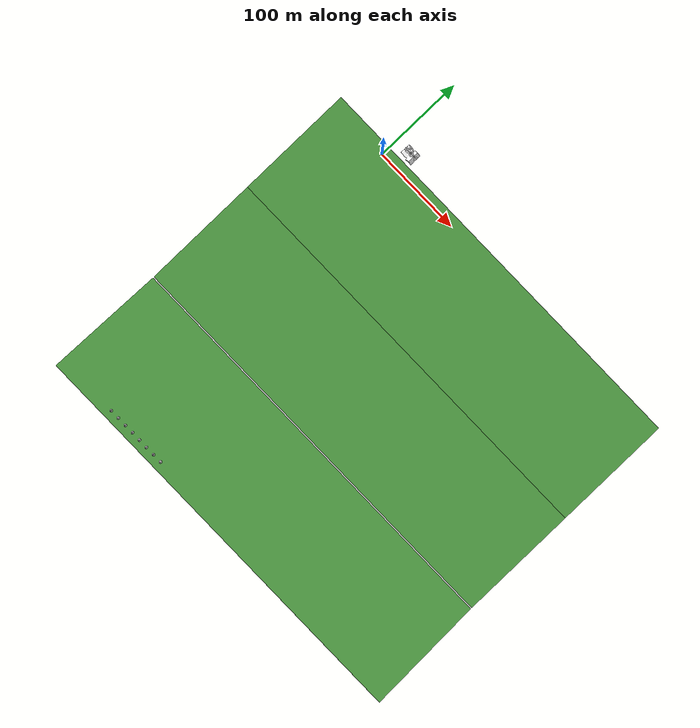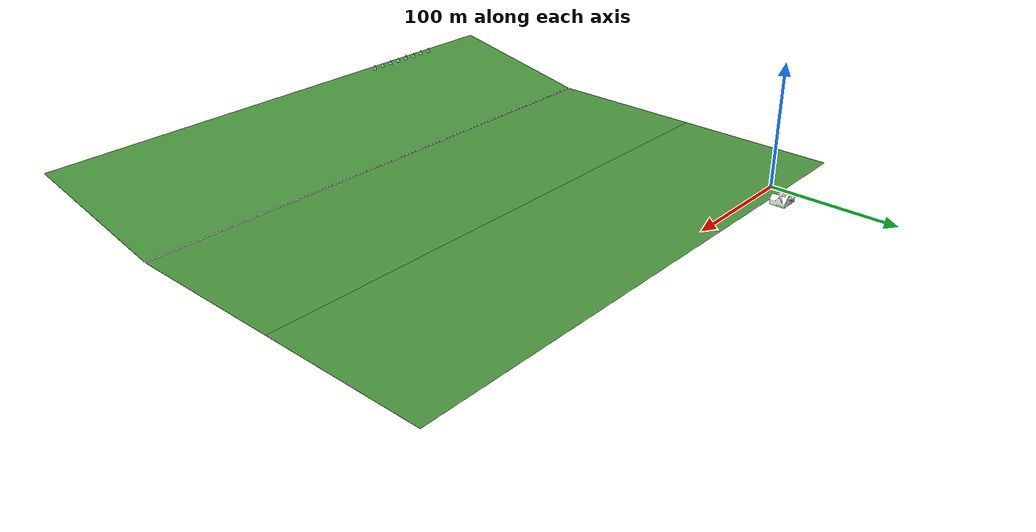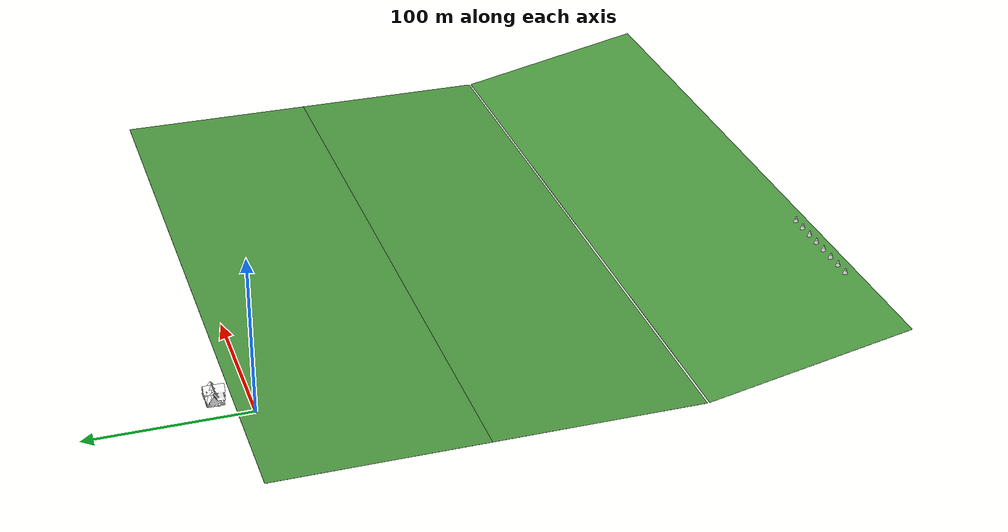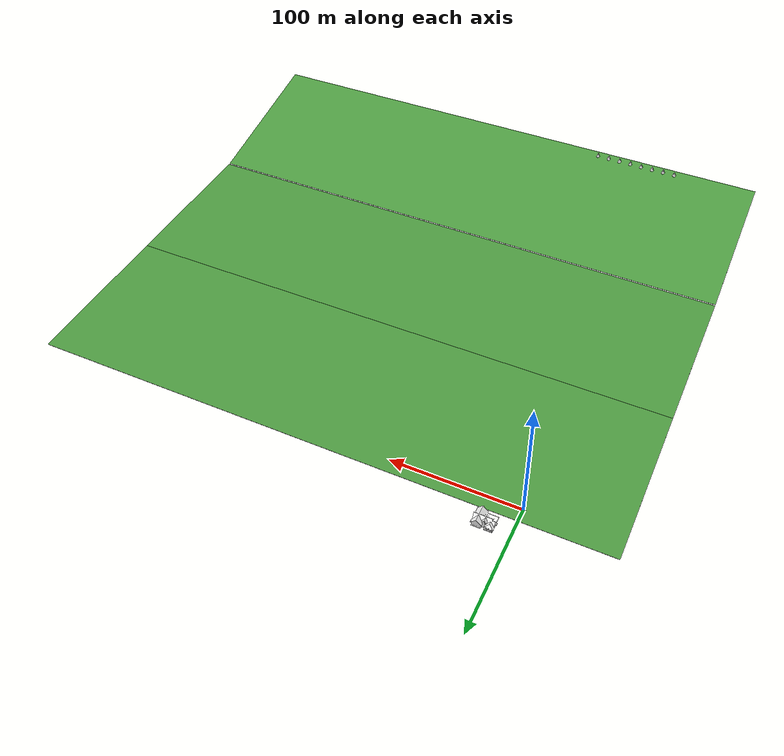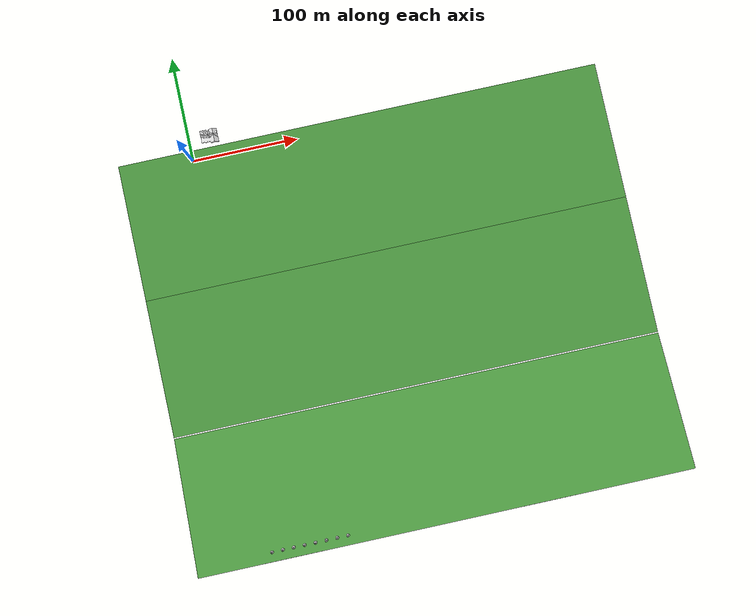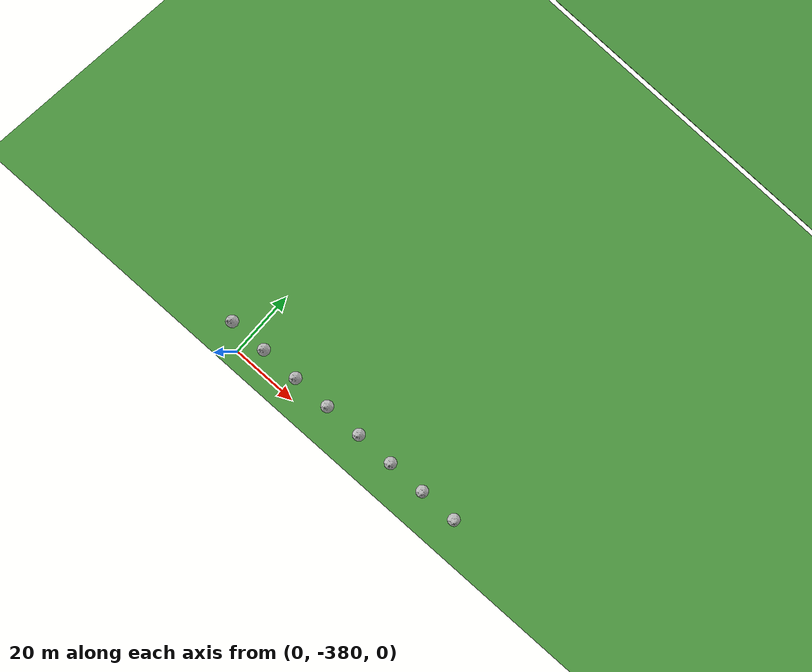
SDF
<?xml version="1.0" ?>
<sdf version="1.4">
  <world name="default">

    <plugin name="attach_vehicle_plugin" filename="libAttachVehiclesPlugin.so">
      <ros>
        <namespace>attach_vehicle</namespace>
      </ros>
      <!-- Match variables within the controller cpp file -->
      <drone_model>iris_demo</drone_model>
      <rover_model>sensor_payload</rover_model>
      <allowable_offset_height>1.0</allowable_offset_height>
      <allowable_offset_horizontal>0.2</allowable_offset_horizontal>
    </plugin>

    <spherical_coordinates>
      <surface_model>EARTH_WGS84</surface_model>
      <latitude_deg>51.4233628</latitude_deg>
      <longitude_deg>-2.671671</longitude_deg>
      <elevation>100.0</elevation>
    </spherical_coordinates>

    <include>
      <uri>model://sun</uri>
    </include>

    <frame name="field">
      <pose>0 0 0 0 0 -1.25</pose>
    </frame>

    <include>
      <uri>model://construction_cone</uri>
      <name>static_cone_1</name>
      <pose relative_to="field">2.0 0.0 0.05 0 0 0</pose>
      <static>1</static>
    </include>

    <include>
      <uri>model://construction_cone</uri>
      <name>static_cone_2</name>
      <pose relative_to="field">-2.0 0.0 0.05 0 0 0</pose>
      <static>1</static>
    </include>

    <include>
      <uri>model://house_1</uri>
      <name>barn</name>
      <pose relative_to="field">20 20 0 0 0 0</pose>
      <static>1</static>
    </include>

    <include>
      <uri>model://grass_box</uri>
      <name>grass_flat_near</name>
      <pose relative_to="field">160 -55 0.05 0 0 0</pose>
      <static>1</static>
    </include>

    <include>
      <uri>model://grass_box</uri>
      <name>grass_flat_far</name>
      <pose relative_to="field">160 -185 0.05 0 0 0</pose>
      <static>1</static>
    </include>

    <include>
      <uri>model://grass_box</uri>
      <name>grass_slope</name>
      <pose relative_to="field">160 -315 13 -0.2 0 0</pose>
      <static>1</static>
    </include>

    <include>
      <uri>model://pine_tree</uri>
      <name>tree_1</name>
      <pose relative_to="field">0 -370 26 0 0 0</pose>
      <static>1</static>
    </include>

    <include>
      <uri>model://pine_tree</uri>
      <name>tree_2</name>
      <pose relative_to="field">20 -370 26 0 0 0</pose>
      <static>1</static>
    </include>

    <include>
      <uri>model://pine_tree</uri>
      <name>tree_3</name>
      <pose relative_to="field">40 -370 26 0 0 0</pose>
      <static>1</static>
    </include>

    <include>
      <uri>model://pine_tree</uri>
      <name>tree_4</name>
      <pose relative_to="field">60 -370 26 0 0 0</pose>
      <static>1</static>
    </include>

    <include>
      <uri>model://pine_tree</uri>
      <name>tree_5</name>
      <pose relative_to="field">10 -370 26 0 0 0</pose>
      <static>1</static>
    </include>

    <include>
      <uri>model://pine_tree</uri>
      <name>tree_6</name>
      <pose relative_to="field">30 -370 26 0 0 0</pose>
      <static>1</static>
    </include>

    <include>
      <uri>model://pine_tree</uri>
      <name>tree_7</name>
      <pose relative_to="field">50 -370 26 0 0 0</pose>
      <static>1</static>
    </include>

    <include>
      <uri>model://pine_tree</uri>
      <name>tree_8</name>
      <pose relative_to="field">70 -370 26 0 0 0</pose>
      <static>1</static>
    </include>

  </world>
</sdf>

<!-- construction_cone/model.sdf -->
<sdf version="1.5">
  <model name="Construction Cone">
    <link name="link">
      <collision name="collision">
        <geometry>
          <mesh>
            <scale>10 10 10</scale>
            <uri>file://isr-testbed/construction_cone/meshes/construction_cone.dae</uri>
          </mesh>
        </geometry>
      </collision>
      <visual name="visual">
        <geometry>
          <mesh>
            <scale>10 10 10</scale>
            <uri>file://isr-testbed/construction_cone/meshes/construction_cone.dae</uri>
          </mesh>
        </geometry>
      </visual>
    </link>
  </model>
</sdf>

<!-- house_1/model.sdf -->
<sdf version="1.5">
  <model name="House 1">
    <static>true</static>
    <link name="link">
      <collision name="collision">
        <geometry>
          <mesh>
            <uri>model://house_1/meshes/house_1.dae</uri>
            <scale>1.5 1.5 1.5</scale>
          </mesh>
        </geometry>
      </collision>
      <visual name="visual">
        <geometry>
          <mesh>
            <uri>model://house_1/meshes/house_1.dae</uri>
            <scale>1.5 1.5 1.5</scale>
          </mesh>
        </geometry>
        <material>
          <script>
            <uri>model://house_1/materials/scripts</uri>
            <uri>model://house_1/materials/textures</uri>
            <name>House_1/Diffuse</name>
          </script>
        </material>
      </visual>
    </link>
  </model>
</sdf>

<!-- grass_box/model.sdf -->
<sdf version='1.7'>
  <model name='grass_box'>
    <link name='link_0'>
      <inertial>
        <mass>1</mass>
        <inertia>
          <ixx>0.166667</ixx>
          <ixy>0</ixy>
          <ixz>0</ixz>
          <iyy>0.166667</iyy>
          <iyz>0</iyz>
          <izz>0.166667</izz>
        </inertia>
        <pose>0 0 0 0 -0 0</pose>
      </inertial>
      <pose>0 0 0 0 -0 0</pose>
      <gravity>1</gravity>
      <self_collide>0</self_collide>
      <kinematic>0</kinematic>
      <enable_wind>0</enable_wind>
      <visual name='visual'>
        <pose>0 0 0 0 -0 0</pose>
        <geometry>
          <box>
            <size>460 130 0.1</size>
          </box>
        </geometry>
        <material>
          <lighting>1</lighting>
          <script>
            <uri>file://media/materials/scripts/gazebo.material</uri>
            <name>Gazebo/Grass</name>
          </script>
          <shader type='pixel'>
            <normal_map>__default__</normal_map>
          </shader>
          <ambient>0.5 0.5 0.5 1</ambient>
          <diffuse>1 1 1 1</diffuse>
          <specular>0 0 0 1</specular>
          <emissive>0 0 0 1</emissive>
        </material>
        <transparency>0</transparency>
        <cast_shadows>1</cast_shadows>
      </visual>
      <collision name='collision'>
        <laser_retro>0</laser_retro>
        <max_contacts>10</max_contacts>
        <pose>0 0 0 0 -0 0</pose>
        <geometry>
          <box>
            <size>460 130 0.1</size>
          </box>
        </geometry>
        <surface>
          <friction>
            <ode>
              <mu>1</mu>
              <mu2>1</mu2>
              <fdir1>0 0 0</fdir1>
              <slip1>0</slip1>
              <slip2>0</slip2>
            </ode>
            <torsional>
              <coefficient>1</coefficient>
              <patch_radius>0</patch_radius>
              <surface_radius>0</surface_radius>
              <use_patch_radius>1</use_patch_radius>
              <ode>
                <slip>0</slip>
              </ode>
            </torsional>
          </friction>
          <bounce>
            <restitution_coefficient>0</restitution_coefficient>
            <threshold>1e+06</threshold>
          </bounce>
          <contact>
            <collide_without_contact>0</collide_without_contact>
            <collide_without_contact_bitmask>1</collide_without_contact_bitmask>
            <collide_bitmask>1</collide_bitmask>
            <ode>
              <soft_cfm>0</soft_cfm>
              <soft_erp>0.2</soft_erp>
              <kp>1e+13</kp>
              <kd>1</kd>
              <max_vel>0.01</max_vel>
              <min_depth>0</min_depth>
            </ode>
            <bullet>
              <split_impulse>1</split_impulse>
              <split_impulse_penetration_threshold>-0.01</split_impulse_penetration_threshold>
              <soft_cfm>0</soft_cfm>
              <soft_erp>0.2</soft_erp>
              <kp>1e+13</kp>
              <kd>1</kd>
            </bullet>
          </contact>
        </surface>
      </collision>
    </link>
    <static>0</static>
    <allow_auto_disable>1</allow_auto_disable>
  </model>
</sdf>

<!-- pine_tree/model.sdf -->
<sdf version="1.6">
  <model name="pine_tree">
    <static>true</static>
    <link name="link">
      <collision name="collision">
        <geometry>
          <mesh>
            <uri>file://isr-testbed/pine_tree/meshes/pine_tree.dae</uri>
          </mesh>
        </geometry>
      </collision>
      <visual name="branch">
        <geometry>
          <mesh>
            <uri>file://isr-testbed/pine_tree/meshes/pine_tree.dae</uri>
            <submesh>
              <name>Branch</name>
            </submesh>
          </mesh>
        </geometry>
        <material>
          <script>
            <uri>file://isr-testbed/pine_tree/materials/scripts/</uri>
            <uri>file://isr-testbed/pine_tree/materials/textures/</uri>
            <name>PineTree/Branch</name>
          </script>
        </material>
      </visual>
      <visual name="bark">
        <geometry>
          <mesh>
            <uri>file://isr-testbed/pine_tree/meshes/pine_tree.dae</uri>
            <submesh>
              <name>Bark</name>
            </submesh>
          </mesh>
        </geometry>
        <material>
          <script>
            <uri>file://isr-testbed/pine_tree/materials/scripts/</uri>
            <uri>file://isr-testbed/pine_tree/materials/textures/</uri>
            <name>PineTree/Bark</name>
          </script>
        </material>
      </visual>
    </link>
  </model>
</sdf>
